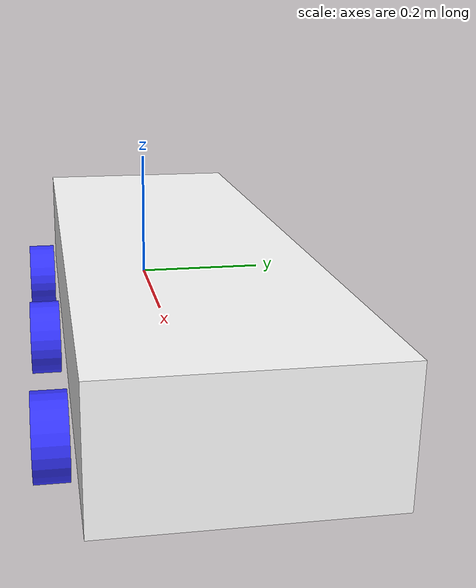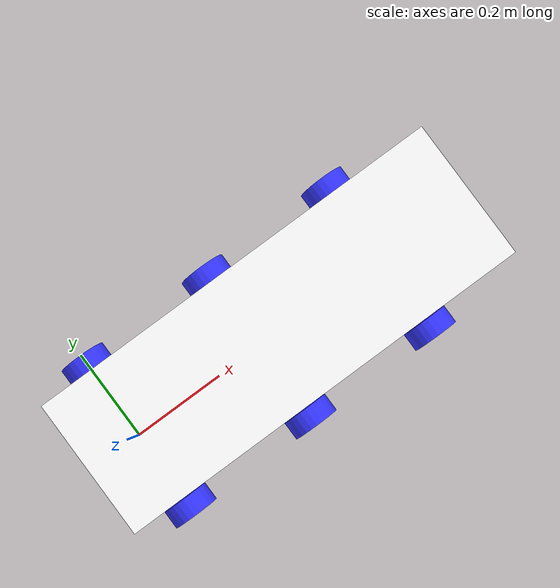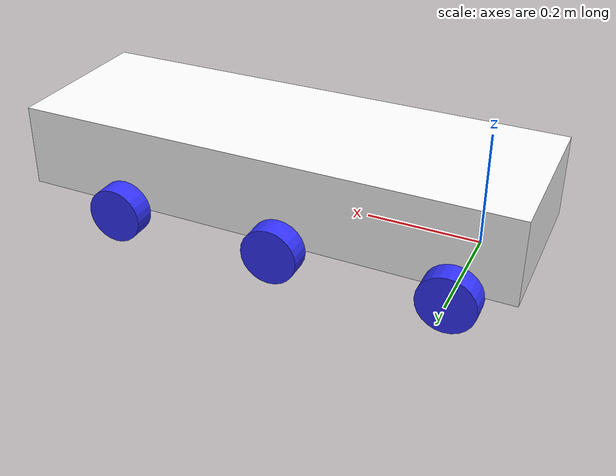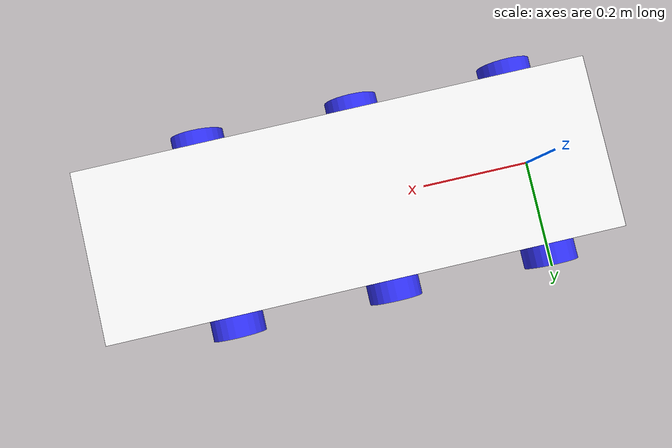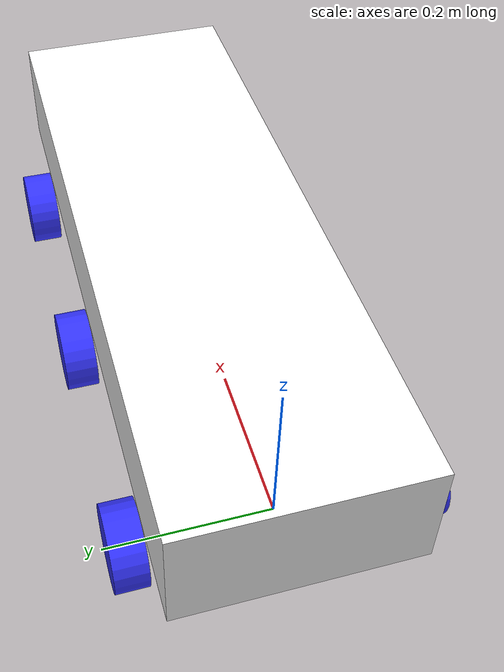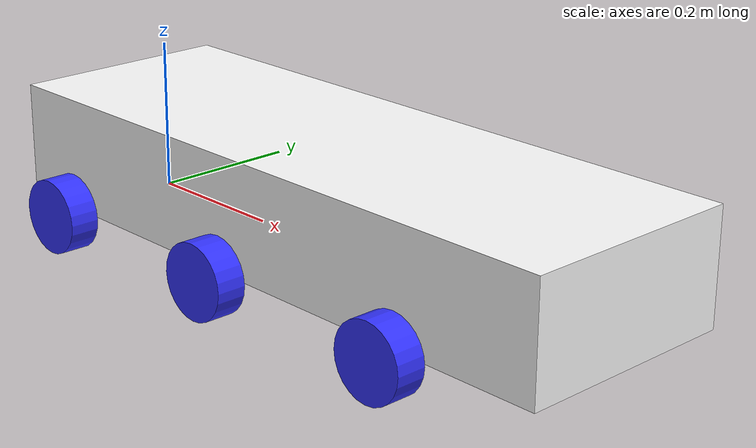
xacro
<?xml version="1.0"?>
<robot xmlns:xacro="http://www.ros.org/wiki/xacro">
    <xacro:include filename="inertial_macros.xacro"/>

    <!-- Materials -->
    <material name="white">
        <color rgba="1 1 1 1" />
    </material>

    <material name="blue">
        <color rgba="0.2 0.2 1 1" />
    </material>

    <!-- BASE LINK -->
    <link name="base_link">
    </link>

    <!-- CHASSIS LINK -->
    <link name="chassis">
        <visual>
            <origin xyz="0.45 0 0.075" />
            <geometry>
                <box size="0.9 0.3 0.15" />
            </geometry>
            <material name="white" />
        </visual>

        <collision>
            <origin xyz="0.45 0 0.075" />
            <geometry>
                <box size="0.9 0.3 0.15" />
            </geometry>
        </collision>

        <xacro:inertial_box mass="0.5" x="0.3" y="0.3" z="0.15">
            <origin xyz="0.15 0 0.075" rpy="0 0 0"/>
        </xacro:inertial_box>
    </link>

    <joint name="chassis_joint" type="fixed">
        <parent link="base_link" />
        <child link="chassis" />
        <origin xyz="-0.1 0 0" />
    </joint>

    <!-- LEFT WHEELS -->
    <!-- Left Wheel 1 -->
    <joint name="left_wheel_1_joint" type="continuous">
        <parent link="chassis"/>
        <child link="left_wheel_1"/>
        <origin xyz="0.4 0.175 0" rpy="1.5708 0 0"/>
        <axis xyz="0 0 1"/>
    </joint>

    <link name="left_wheel_1">
        <visual>
            <geometry>
                <cylinder radius="0.05" length="0.04"/>
            </geometry>
            <material name="blue"/>
        </visual>

        <collision>
            <geometry>
                <cylinder radius="0.05" length="0.04"/>
            </geometry>
            <surface>
                <friction>
                    <ode>
                        <mu>1.0</mu>
                        <mu2>0.5</mu2>
                    </ode>
                </friction>
            </surface>
        </collision>

        <xacro:inertial_cylinder mass="0.1" length="0.04" radius="0.05">
            <origin xyz="0 0 0" rpy="0 0 0"/>
        </xacro:inertial_cylinder>
    </link>

    <!-- Left Wheel 2 -->
    <joint name="left_wheel_2_joint" type="continuous">
        <parent link="chassis"/>
        <child link="left_wheel_2"/>
        <origin xyz="0.1 0.175 0" rpy="1.5708 0 0"/>
        <axis xyz="0 0 1"/>
    </joint>

    <link name="left_wheel_2">
        <visual>
            <geometry>
                <cylinder radius="0.05" length="0.04"/>
            </geometry>
            <material name="blue"/>
        </visual>

        <collision>
            <geometry>
                <cylinder radius="0.05" length="0.04"/>
            </geometry>
            <surface>
                <friction>
                    <ode>
                        <mu>1.0</mu>
                        <mu2>0.5</mu2>
                    </ode>
                </friction>
            </surface>
        </collision>

        <xacro:inertial_cylinder mass="0.1" length="0.04" radius="0.05">
            <origin xyz="0 0 0" rpy="0 0 0"/>
        </xacro:inertial_cylinder>
    </link>

    <!-- Left Wheel 3 -->
    <joint name="left_wheel_3_joint" type="continuous">
        <parent link="chassis"/>
        <child link="left_wheel_3"/>
        <origin xyz="0.7 0.175 0" rpy="1.5708 0 0"/>
        <axis xyz="0 0 1"/>
    </joint>

    <link name="left_wheel_3">
        <visual>
            <geometry>
                <cylinder radius="0.05" length="0.04"/>
            </geometry>
            <material name="blue"/>
        </visual>

        <collision>
            <geometry>
                <cylinder radius="0.05" length="0.04"/>
            </geometry>
            <surface>
                <friction>
                    <ode>
                        <mu>1.0</mu>
                        <mu2>0.5</mu2>
                    </ode>
                </friction>
            </surface>
        </collision>

        <xacro:inertial_cylinder mass="0.1" length="0.04" radius="0.05">
            <origin xyz="0 0 0" rpy="0 0 0"/>
        </xacro:inertial_cylinder>
    </link>

    <!-- RIGHT WHEELS -->
    <!-- Right Wheel 1 -->
    <joint name="right_wheel_1_joint" type="continuous">
        <parent link="chassis"/>
        <child link="right_wheel_1"/>
        <origin xyz="0.4 -0.175 0" rpy="1.5708 0 0"/>
        <axis xyz="0 0 1"/>
    </joint>

    <link name="right_wheel_1">
        <visual>
            <geometry>
                <cylinder radius="0.05" length="0.04"/>
            </geometry>
            <material name="blue"/>
        </visual>

        <collision>
            <geometry>
                <cylinder radius="0.05" length="0.04"/>
            </geometry>
            <surface>
                <friction>
                    <ode>
                        <mu>1.0</mu>
                        <mu2>0.5</mu2>
                    </ode>
                </friction>
            </surface>
        </collision>

        <xacro:inertial_cylinder mass="0.1" length="0.04" radius="0.05">
            <origin xyz="0 0 0" rpy="0 0 0"/>
        </xacro:inertial_cylinder>
    </link>

    <!-- Right Wheel 2 -->
    <joint name="right_wheel_2_joint" type="continuous">
        <parent link="chassis"/>
        <child link="right_wheel_2"/>
        <origin xyz="0.1 -0.175 0" rpy="1.5708 0 0"/>
        <axis xyz="0 0 1"/>
    </joint>

    <link name="right_wheel_2">
        <visual>
            <geometry>
                <cylinder radius="0.05" length="0.04"/>
            </geometry>
            <material name="blue"/>
        </visual>

        <collision>
            <geometry>
                <cylinder radius="0.05" length="0.04"/>
            </geometry>
            <surface>
                <friction>
                    <ode>
                        <mu>1.0</mu>
                        <mu2>0.5</mu2>
                    </ode>
                </friction>
            </surface>
        </collision>

        <xacro:inertial_cylinder mass="0.1" length="0.04" radius="0.05">
            <origin xyz="0 0 0" rpy="0 0 0"/>
        </xacro:inertial_cylinder>
    </link>

    <!-- Right Wheel 3 -->
    <joint name="right_wheel_3_joint" type="continuous">
        <parent link="chassis"/>
        <child link="right_wheel_3"/>
        <origin xyz="0.7 -0.175 0" rpy="1.5708 0 0"/>
        <axis xyz="0 0 1"/>
    </joint>

    <link name="right_wheel_3">
        <visual>
            <geometry>
                <cylinder radius="0.05" length="0.04"/>
            </geometry>
            <material name="blue"/>
        </visual>

        <collision>
            <geometry>
                <cylinder radius="0.05" length="0.04"/>
            </geometry>
            <surface>
                <friction>
                    <ode>
                        <mu>1.0</mu>
                        <mu2>0.5</mu2>
                    </ode>
                </friction>
            </surface>
        </collision>

        <xacro:inertial_cylinder mass="0.1" length="0.04" radius="0.05">
            <origin xyz="0 0 0" rpy="0 0 0"/>
        </xacro:inertial_cylinder>
    </link>

</robot>
